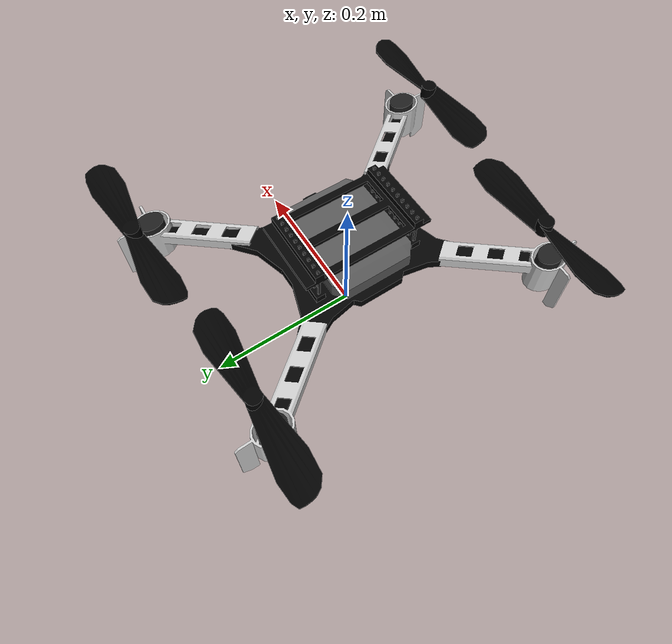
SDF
<sdf version='1.6'>
  <model name='crazyflie'>
    <pose>0 0 0.053302 0 0 0</pose>
    <link name='crazyflie/base_link'>
      <pose frame=''>0 0 0 0 -0 0</pose>
      <inertial>
        <pose frame=''>0 0 0 0 -0 0</pose>
        <mass>1.5</mass>
        <inertia>
          <ixx>0.0347563</ixx>
          <ixy>0</ixy>
          <ixz>0</ixz>
          <iyy>0.07</iyy>
          <iyz>0</iyz>
          <izz>0.0977</izz>
        </inertia>
      </inertial>
      <collision name='crazyflie/base_link_inertia_collision'>
        <pose frame=''>0 0 0 0 -0 0</pose>
        <geometry>
          <box>
            <size>0.47 0.47 0.11</size>
          </box>
        </geometry>
      </collision>
      <visual name='crazyflie/base_link_inertia_visual'>
        <pose frame=''>0 0 0 0 -0 0</pose>
        <geometry>
          <mesh>
            <scale>5 6.3 5</scale>
            <uri>model://crazyflie/meshes/cf2_assembly.dae</uri>
          </mesh>
        </geometry>
      </visual>
    <sensor name='multiranger' type='gpu_lidar'>"
    <pose relative_to='crazyflie/base_link'>0 0 0.1 0 0 0</pose>
    <topic>lidar</topic>
    <update_rate>10</update_rate>
    <ray>
        <scan>
            <horizontal>
                <samples>4</samples>
                <resolution>1</resolution>
                <min_angle>-3.14</min_angle>
                <max_angle>1.57</max_angle>
            </horizontal>
            <vertical>
                <samples>1</samples>
                <resolution>0.01</resolution>
                <min_angle>0</min_angle>
                <max_angle>0</max_angle>
            </vertical>
        </scan>
        <range>
            <min>0.01</min>
            <max>3.49</max>
            <resolution>0.01</resolution>
        </range>
    </ray>
    <always_on>1</always_on>
    <visualize>true</visualize>
</sensor>

    </link>
    <link name='crazyflie/m1'>
      <pose frame=''>0.13 -0.22 0.023 0 -0 0</pose>
      <inertial>
        <pose frame=''>0 0 0 0 -0 0</pose>
        <mass>0.005</mass>
        <inertia>
          <ixx>9.75e-07</ixx>
          <ixy>0</ixy>
          <ixz>0</ixz>
          <iyy>4.17041e-05</iyy>
          <iyz>0</iyz>
          <izz>4.26041e-05</izz>
        </inertia>
      </inertial>
      <collision name='crazyflie/m1_collision'>
        <pose frame=''>0 0 0 0 -0 0</pose>
        <geometry>
          <cylinder>
            <length>0.005</length>
            <radius>0.1</radius>
          </cylinder>
        </geometry>
        <surface>
          <contact>
            <ode/>
          </contact>
          <friction>
            <ode/>
          </friction>
        </surface>
      </collision>
      <visual name='crazyflie/m1_visual'>
        <pose frame=''>0 0 0.1 0 -0 0</pose>
        <geometry>
          <mesh>
            <scale>5 5 5</scale>
            <uri>model://crazyflie/meshes/ccw_prop.dae</uri>
          </mesh>
        </geometry>
      </visual>
      <gravity>1</gravity>
      <velocity_decay/>
    </link>
    <joint name='crazyflie/m1_joint' type='revolute'>
      <child>crazyflie/m1</child>
      <parent>crazyflie/base_link</parent>
      <axis>
        <xyz>0 0 1</xyz>
        <limit>
          <lower>-1e+16</lower>
          <upper>1e+16</upper>
        </limit>
        <dynamics>
          <spring_reference>0</spring_reference>
          <spring_stiffness>0</spring_stiffness>
        </dynamics>
        <use_parent_model_frame>1</use_parent_model_frame>
      </axis>
    </joint>
    <link name='crazyflie/m2'>
      <pose frame=''>-0.13 0.2 0.023 0 -0 0</pose>
      <inertial>
        <pose frame=''>0 0 0 0 -0 0</pose>
        <mass>0.005</mass>
        <inertia>
          <ixx>9.75e-07</ixx>
          <ixy>0</ixy>
          <ixz>0</ixz>
          <iyy>4.17041e-05</iyy>
          <iyz>0</iyz>
          <izz>4.26041e-05</izz>
        </inertia>
      </inertial>
      <collision name='crazyflie/m2_collision'>
        <pose frame=''>0 0 0 0 -0 0</pose>
        <geometry>
          <cylinder>
            <length>0.005</length>
            <radius>0.1</radius>
          </cylinder>
        </geometry>
        <surface>
          <contact>
            <ode/>
          </contact>
          <friction>
            <ode/>
          </friction>
        </surface>
      </collision>
      <visual name='crazyflie/m2_visual'>
        <pose frame=''>0 0 0.1 0 -0 0</pose>
        <geometry>
          <mesh>
            <scale>5 5 5</scale>
            <uri>model://crazyflie/meshes/ccw_prop.dae</uri>
          </mesh>
        </geometry>
      </visual>
      <gravity>1</gravity>
      <velocity_decay/>
    </link>
    <joint name='crazyflie/m2_joint' type='revolute'>
      <child>crazyflie/m2</child>
      <parent>crazyflie/base_link</parent>
      <axis>
        <xyz>0 0 1</xyz>
        <limit>
          <lower>-1e+16</lower>
          <upper>1e+16</upper>
        </limit>
        <dynamics>
          <spring_reference>0</spring_reference>
          <spring_stiffness>0</spring_stiffness>
        </dynamics>
        <use_parent_model_frame>1</use_parent_model_frame>
      </axis>
    </joint>
    <link name='crazyflie/m3'>
      <pose frame=''>0.13 0.22 0.023 0 -0 0</pose>
      <inertial>
        <pose frame=''>0 0 0 0 -0 0</pose>
        <mass>0.005</mass>
        <inertia>
          <ixx>9.75e-07</ixx>
          <ixy>0</ixy>
          <ixz>0</ixz>
          <iyy>4.17041e-05</iyy>
          <iyz>0</iyz>
          <izz>4.26041e-05</izz>
        </inertia>
      </inertial>
      <collision name='crazyflie/m3_collision'>
        <pose frame=''>0 0 0 0 -0 0</pose>
        <geometry>
          <cylinder>
            <length>0.005</length>
            <radius>0.1</radius>
          </cylinder>
        </geometry>
        <surface>
          <contact>
            <ode/>
          </contact>
          <friction>
            <ode/>
          </friction>
        </surface>
      </collision>
      <visual name='crazyflie/m3_visual'>
        <pose frame=''>0 0 0.1 0 -0 0</pose>
        <geometry>
          <mesh>
            <scale>5 5 5</scale>
            <uri>model://crazyflie/meshes/cw_prop.dae</uri>
          </mesh>
        </geometry>
      </visual>
      <gravity>1</gravity>
      <velocity_decay/>
    </link>
    <joint name='crazyflie/m3_joint' type='revolute'>
      <child>crazyflie/m3</child>
      <parent>crazyflie/base_link</parent>
      <axis>
        <xyz>0 0 1</xyz>
        <limit>
          <lower>-1e+16</lower>
          <upper>1e+16</upper>
        </limit>
        <dynamics>
          <spring_reference>0</spring_reference>
          <spring_stiffness>0</spring_stiffness>
        </dynamics>
        <use_parent_model_frame>1</use_parent_model_frame>
      </axis>
    </joint>
    <link name='crazyflie/m4'>
      <pose frame=''>-0.13 -0.2 0.023 0 -0 0</pose>
      <inertial>
        <pose frame=''>0 0 0 0 -0 0</pose>
        <mass>0.005</mass>
        <inertia>
          <ixx>9.75e-07</ixx>
          <ixy>0</ixy>
          <ixz>0</ixz>
          <iyy>4.17041e-05</iyy>
          <iyz>0</iyz>
          <izz>4.26041e-05</izz>
        </inertia>
      </inertial>
      <collision name='crazyflie/m4_collision'>
        <pose frame=''>0 0 0 0 -0 0</pose>
        <geometry>
          <cylinder>
            <length>0.005</length>
            <radius>0.1</radius>
          </cylinder>
        </geometry>
        <surface>
          <contact>
            <ode/>
          </contact>
          <friction>
            <ode/>
          </friction>
        </surface>
      </collision>
      <visual name='crazyflie/m4_visual'>
        <pose frame=''>0 0 0.1 0 -0 0</pose>
        <geometry>
          <mesh>
            <scale>5 5 5</scale>
            <uri>model://crazyflie/meshes/cw_prop.dae</uri>
          </mesh>
        </geometry>
      </visual>
      <gravity>1</gravity>
      <velocity_decay/>
    </link>
    <joint name='crazyflie/m4_joint' type='revolute'>
      <child>crazyflie/m4</child>
      <parent>crazyflie/base_link</parent>
      <axis>
        <xyz>0 0 1</xyz>
        <limit>
          <lower>-1e+16</lower>
          <upper>1e+16</upper>
        </limit>
        <dynamics>
          <spring_reference>0</spring_reference>
          <spring_stiffness>0</spring_stiffness>
        </dynamics>
        <use_parent_model_frame>1</use_parent_model_frame>
      </axis>
    </joint>
      <plugin
        filename="ignition-gazebo-multicopter-motor-model-system"
        name="gz::sim::systems::MulticopterMotorModel">
        <robotNamespace>crazyflie</robotNamespace>
        <jointName>crazyflie/m1_joint</jointName>
        <linkName>crazyflie/m1</linkName>
        <turningDirection>ccw</turningDirection>
        <timeConstantUp>0.0125</timeConstantUp>
        <timeConstantDown>0.025</timeConstantDown>
        <maxRotVelocity>800.0</maxRotVelocity>
        <motorConstant>8.54858e-06</motorConstant>
        <momentConstant>0.016</momentConstant>
        <commandSubTopic>gazebo/command/motor_speed</commandSubTopic>
        <motorNumber>0</motorNumber>
        <rotorDragCoefficient>8.06428e-05</rotorDragCoefficient>
        <rollingMomentCoefficient>1e-06</rollingMomentCoefficient>
        <motorSpeedPubTopic>motor_speed/0</motorSpeedPubTopic>
        <rotorVelocitySlowdownSim>10</rotorVelocitySlowdownSim>
        <motorType>velocity</motorType>
      </plugin>
      <plugin
        filename="ignition-gazebo-multicopter-motor-model-system"
        name="gz::sim::systems::MulticopterMotorModel">
        <robotNamespace>crazyflie</robotNamespace>
        <jointName>crazyflie/m2_joint</jointName>
        <linkName>crazyflie/m2</linkName>
        <turningDirection>ccw</turningDirection>
        <timeConstantUp>0.0125</timeConstantUp>
        <timeConstantDown>0.025</timeConstantDown>
        <maxRotVelocity>800.0</maxRotVelocity>
        <motorConstant>8.54858e-06</motorConstant>
        <momentConstant>0.016</momentConstant>
        <commandSubTopic>gazebo/command/motor_speed</commandSubTopic>
        <motorNumber>1</motorNumber>
        <rotorDragCoefficient>8.06428e-05</rotorDragCoefficient>
        <rollingMomentCoefficient>1e-06</rollingMomentCoefficient>
        <motorSpeedPubTopic>motor_speed/1</motorSpeedPubTopic>
        <rotorVelocitySlowdownSim>10</rotorVelocitySlowdownSim>
        <motorType>velocity</motorType>
      </plugin>
      <plugin
        filename="ignition-gazebo-multicopter-motor-model-system"
        name="gz::sim::systems::MulticopterMotorModel">
        <robotNamespace>crazyflie</robotNamespace>
        <jointName>crazyflie/m3_joint</jointName>
        <linkName>crazyflie/m3</linkName>
        <turningDirection>cw</turningDirection>
        <timeConstantUp>0.0125</timeConstantUp>
        <timeConstantDown>0.025</timeConstantDown>
        <maxRotVelocity>800.0</maxRotVelocity>
        <motorConstant>8.54858e-06</motorConstant>
        <momentConstant>0.016</momentConstant>
        <commandSubTopic>gazebo/command/motor_speed</commandSubTopic>
        <motorNumber>2</motorNumber>
        <rotorDragCoefficient>8.06428e-05</rotorDragCoefficient>
        <rollingMomentCoefficient>1e-06</rollingMomentCoefficient>
        <motorSpeedPubTopic>motor_speed/2</motorSpeedPubTopic>
        <rotorVelocitySlowdownSim>10</rotorVelocitySlowdownSim>
        <motorType>velocity</motorType>
      </plugin>
      <plugin
        filename="ignition-gazebo-multicopter-motor-model-system"
        name="gz::sim::systems::MulticopterMotorModel">
        <robotNamespace>crazyflie</robotNamespace>
        <jointName>crazyflie/m4_joint</jointName>
        <linkName>crazyflie/m4</linkName>
        <turningDirection>cw</turningDirection>
        <timeConstantUp>0.0125</timeConstantUp>
        <timeConstantDown>0.025</timeConstantDown>
        <maxRotVelocity>800.0</maxRotVelocity>
        <motorConstant>8.54858e-06</motorConstant>
        <momentConstant>0.016</momentConstant>
        <commandSubTopic>gazebo/command/motor_speed</commandSubTopic>
        <motorNumber>3</motorNumber>
        <rotorDragCoefficient>8.06428e-05</rotorDragCoefficient>
        <rollingMomentCoefficient>1e-06</rollingMomentCoefficient>
        <motorSpeedPubTopic>motor_speed/3</motorSpeedPubTopic>
        <rotorVelocitySlowdownSim>10</rotorVelocitySlowdownSim>
        <motorType>velocity</motorType>
      </plugin>
      <plugin
        filename="ignition-gazebo-multicopter-control-system"
        name="gz::sim::systems::MulticopterVelocityControl">
        <robotNamespace>crazyflie</robotNamespace>
        <commandSubTopic>gazebo/command/twist</commandSubTopic>
        <enableSubTopic>enable</enableSubTopic>
        <comLinkName>crazyflie/base_link</comLinkName>
        <velocityGain>2.7 2.7 2.7</velocityGain>
        <attitudeGain>2 3 0.15</attitudeGain>
        <angularRateGain>0.4 0.52 0.18</angularRateGain>
        <maximumLinearAcceleration>2 2 2</maximumLinearAcceleration>

        <rotorConfiguration>
          <rotor>
            <jointName>crazyflie/m1_joint</jointName>
            <forceConstant>8.54858e-06</forceConstant>
            <momentConstant>0.016</momentConstant>
            <direction>1</direction>
          </rotor>
          <rotor>
            <jointName>crazyflie/m2_joint</jointName>
            <forceConstant>8.54858e-06</forceConstant>
            <momentConstant>0.016</momentConstant>
            <direction>1</direction>
          </rotor>
          <rotor>
            <jointName>crazyflie/m3_joint</jointName>
            <forceConstant>8.54858e-06</forceConstant>
            <momentConstant>0.016</momentConstant>
            <direction>-1</direction>
          </rotor>
          <rotor>
            <jointName>crazyflie/m4_joint</jointName>
            <forceConstant>8.54858e-06</forceConstant>
            <momentConstant>0.016</momentConstant>
            <direction>-1</direction>
          </rotor>
        </rotorConfiguration>
      </plugin>
      <plugin
        filename="ignition-gazebo-odometry-publisher-system"
        name="ignition::gazebo::systems::OdometryPublisher">
        <dimensions>3</dimensions>
      </plugin>

  </model>
</sdf>
